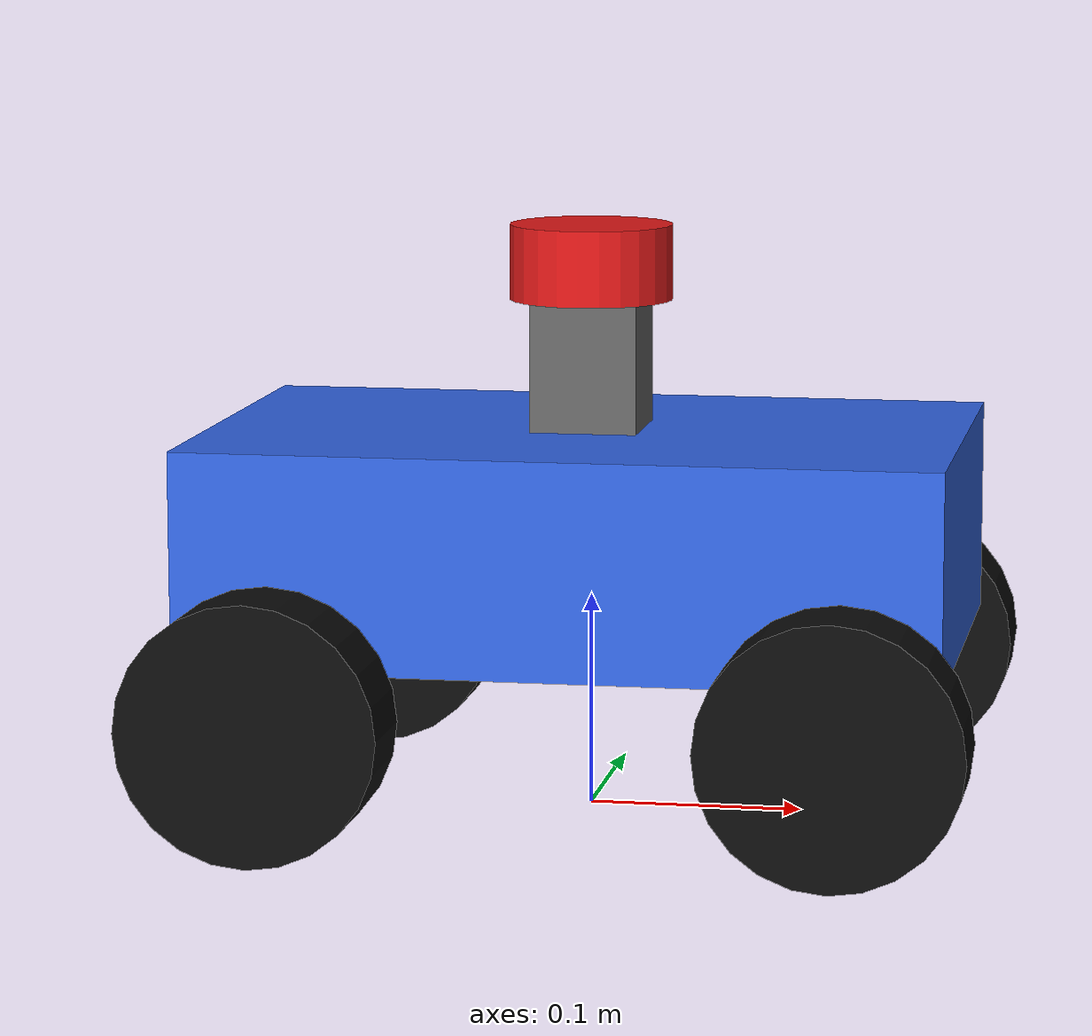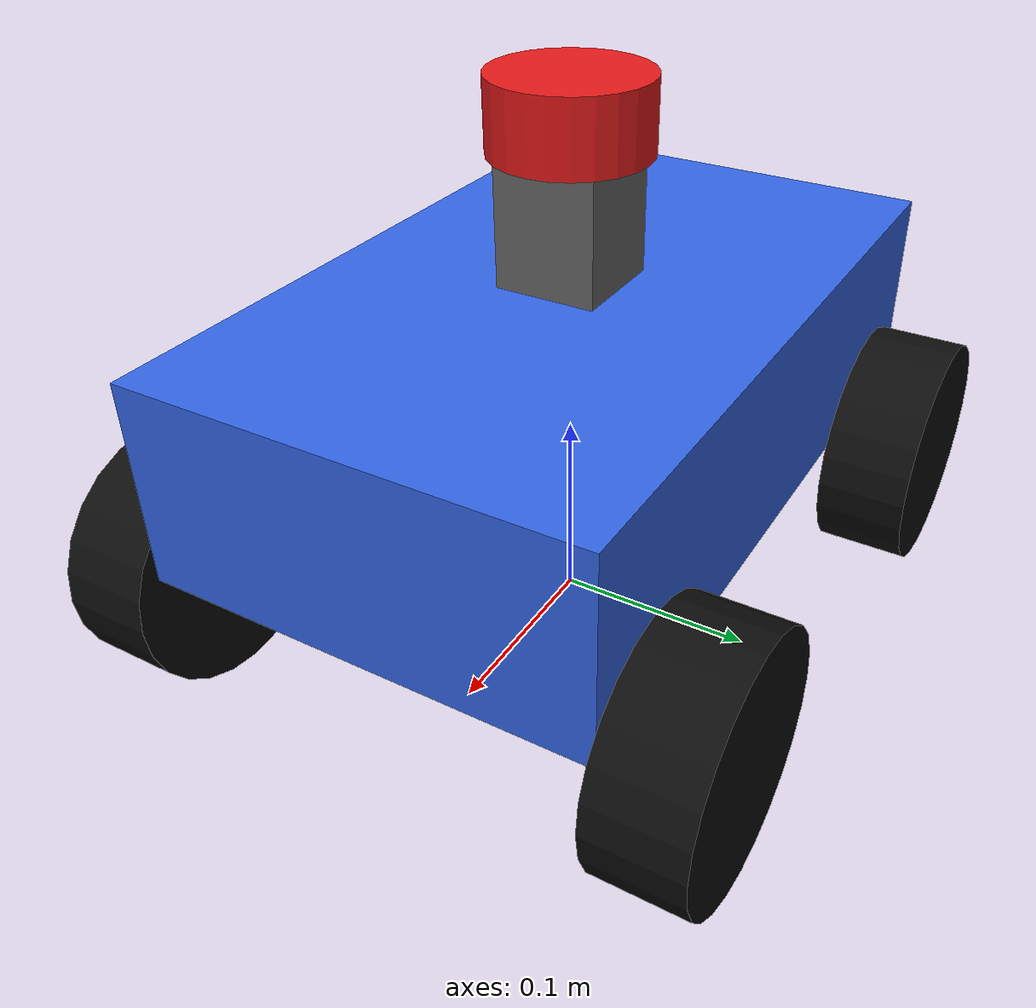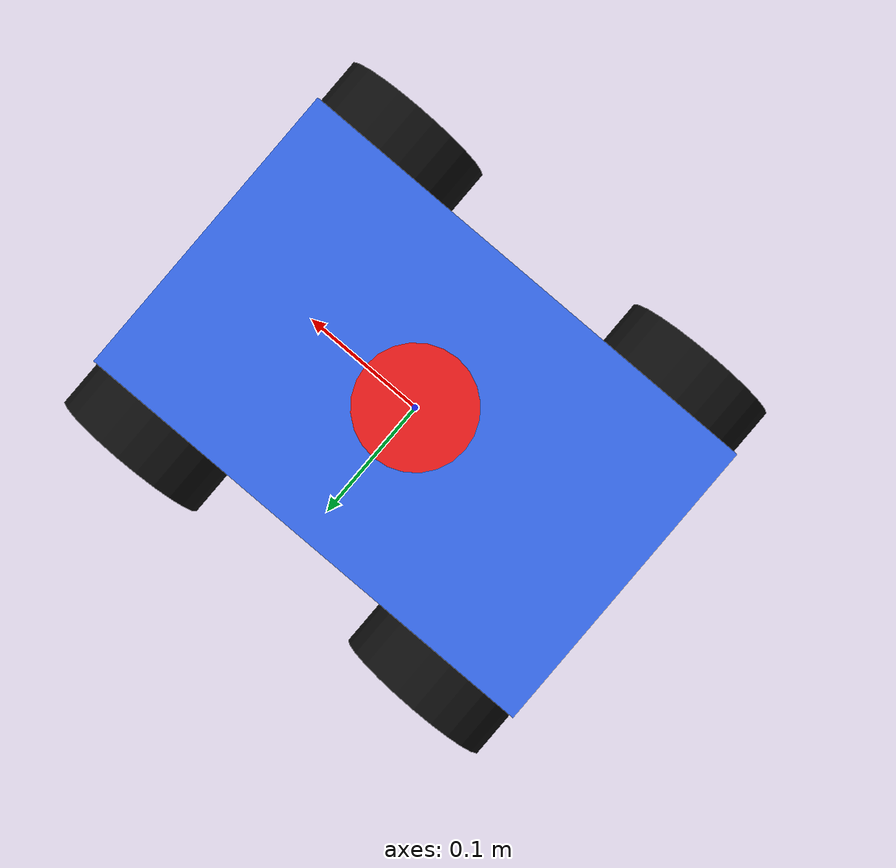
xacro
<?xml version="1.0"?>
<robot xmlns:xacro="http://www.ros.org/wiki/xacro" name="rl_robot">

  <!-- 4-wheel skid-steer robot with a top-mounted 2D lidar.
       Built for reinforcement-learning (obstacle avoidance / goal reaching):
         action  -> /cmd_vel   observation -> /scan (+ /odom)  -->

  <xacro:include filename="materials.xacro"/>
  <xacro:include filename="robot_core.xacro"/>
  <xacro:include filename="gazebo_control.xacro"/>
  <xacro:include filename="lidar.xacro"/>

</robot>

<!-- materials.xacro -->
<robot xmlns:xacro="http://www.ros.org/wiki/xacro">

  <!-- RViz visual materials -->
  <material name="blue">  <color rgba="0.2 0.4 0.9 1.0"/></material>
  <material name="black"> <color rgba="0.05 0.05 0.05 1.0"/></material>
  <material name="grey">  <color rgba="0.4 0.4 0.4 1.0"/></material>
  <material name="red">   <color rgba="0.9 0.1 0.1 1.0"/></material>
  <material name="white"> <color rgba="1.0 1.0 1.0 1.0"/></material>

  <gazebo reference="base_link">
    <material>Gazebo/Blue</material>
  </gazebo>
  <gazebo reference="lidar_mast">
    <material>Gazebo/Grey</material>
  </gazebo>
  <gazebo reference="lidar_link">
    <material>Gazebo/Red</material>
  </gazebo>

  <xacro:macro name="wheel_gazebo" params="ref">
    <gazebo reference="${ref}">
      <material>Gazebo/Black</material>
      <mu1>1.0</mu1>
      <mu2>0.0</mu2>
      <fdir1>1 0 0</fdir1>
      <kp>500000.0</kp>
      <kd>10.0</kd>
      <minDepth>0.001</minDepth>
      <maxVel>1.0</maxVel>
    </gazebo>
  </xacro:macro>

  <xacro:wheel_gazebo ref="front_left_wheel"/>
  <xacro:wheel_gazebo ref="front_right_wheel"/>
  <xacro:wheel_gazebo ref="back_left_wheel"/>
  <xacro:wheel_gazebo ref="back_right_wheel"/>

</robot>

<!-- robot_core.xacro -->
<robot xmlns:xacro="http://www.ros.org/wiki/xacro">

  <xacro:include filename="inertial_macros.xacro"/>

  <!--  Robot dimensions (single source of truth)                           -->
  <!--  Small, symmetric, low centre of mass = stable + easy to learn.      -->
  <xacro:property name="chassis_length" value="0.35"/>
  <xacro:property name="chassis_width"  value="0.22"/>
  <xacro:property name="chassis_height" value="0.10"/>
  <xacro:property name="chassis_mass"   value="4.0"/>

  <xacro:property name="wheel_radius"   value="0.06"/>
  <xacro:property name="wheel_width"    value="0.045"/>
  <xacro:property name="wheel_mass"     value="0.5"/>

  <!-- longitudinal distance of each wheel centre from robot centre -->
  <xacro:property name="wheel_xoff"     value="0.13"/>
  <!-- lateral distance of each wheel centre from robot centre -->
  <xacro:property name="wheel_yoff"     value="${chassis_width/2 + wheel_width/2}"/>

  <!-- height of base_link origin above the ground -->
  <xacro:property name="ground_clearance" value="0.02"/>

  <!--  Frames                                                              -->

  <!-- base_footprint: ground-projected origin, the frame Nav2/RL treat as
       "the robot". Sits on the floor directly under the chassis centre. -->
  <link name="base_footprint"/>

  <joint name="base_joint" type="fixed">
    <parent link="base_footprint"/>
    <child  link="base_link"/>
    <origin xyz="0 0 ${wheel_radius + ground_clearance}" rpy="0 0 0"/>
  </joint>

  <!--  Chassis                                                             -->
  <link name="base_link">
    <visual>
      <origin xyz="0 0 ${chassis_height/2}" rpy="0 0 0"/>
      <geometry>
        <box size="${chassis_length} ${chassis_width} ${chassis_height}"/>
      </geometry>
      <material name="blue"/>
    </visual>
    <collision>
      <origin xyz="0 0 ${chassis_height/2}" rpy="0 0 0"/>
      <geometry>
        <box size="${chassis_length} ${chassis_width} ${chassis_height}"/>
      </geometry>
    </collision>
    <xacro:inertial_box mass="${chassis_mass}" x="${chassis_length}" y="${chassis_width}" z="${chassis_height}">
      <origin xyz="0 0 ${chassis_height/2}" rpy="0 0 0"/>
    </xacro:inertial_box>
  </link>

  <!--  Wheel macro (4x, skid-steer)                                        -->
  <!--  x_reflect: +1 front, -1 back    y_reflect: +1 left, -1 right        -->
  <xacro:macro name="wheel" params="prefix x_reflect y_reflect">
    <link name="${prefix}_wheel">
      <visual>
        <origin xyz="0 0 0" rpy="${pi/2} 0 0"/>
        <geometry>
          <cylinder radius="${wheel_radius}" length="${wheel_width}"/>
        </geometry>
        <material name="black"/>
      </visual>
      <collision>
        <origin xyz="0 0 0" rpy="${pi/2} 0 0"/>
        <geometry>
          <cylinder radius="${wheel_radius}" length="${wheel_width}"/>
        </geometry>
      </collision>
      <xacro:inertial_cylinder mass="${wheel_mass}" length="${wheel_width}" radius="${wheel_radius}">
        <origin xyz="0 0 0" rpy="${pi/2} 0 0"/>
      </xacro:inertial_cylinder>
    </link>

    <joint name="${prefix}_wheel_joint" type="continuous">
      <parent link="base_link"/>
      <child  link="${prefix}_wheel"/>
      <origin xyz="${x_reflect*wheel_xoff} ${y_reflect*wheel_yoff} ${-ground_clearance}"
              rpy="0 0 0"/>
      <axis xyz="0 1 0"/>
    </joint>
  </xacro:macro>

  <xacro:wheel prefix="front_left"  x_reflect="1"  y_reflect="1"/>
  <xacro:wheel prefix="front_right" x_reflect="1"  y_reflect="-1"/>
  <xacro:wheel prefix="back_left"   x_reflect="-1" y_reflect="1"/>
  <xacro:wheel prefix="back_right"  x_reflect="-1" y_reflect="-1"/>

  <!--  Lidar mast + lidar link (on top, centred for a symmetric scan)      -->
  <xacro:property name="mast_height" value="0.06"/>
  <xacro:property name="lidar_height" value="0.035"/>
  <xacro:property name="lidar_radius" value="0.038"/>

  <link name="lidar_mast">
    <visual>
      <origin xyz="0 0 ${mast_height/2}" rpy="0 0 0"/>
      <geometry>
        <box size="0.05 0.05 ${mast_height}"/>
      </geometry>
      <material name="grey"/>
    </visual>
    <collision>
      <origin xyz="0 0 ${mast_height/2}" rpy="0 0 0"/>
      <geometry>
        <box size="0.05 0.05 ${mast_height}"/>
      </geometry>
    </collision>
    <xacro:inertial_box mass="0.15" x="0.05" y="0.05" z="${mast_height}">
      <origin xyz="0 0 ${mast_height/2}" rpy="0 0 0"/>
    </xacro:inertial_box>
  </link>

  <joint name="lidar_mast_joint" type="fixed">
    <parent link="base_link"/>
    <child  link="lidar_mast"/>
    <origin xyz="0 0 ${chassis_height}" rpy="0 0 0"/>
  </joint>

  <link name="lidar_link">
    <visual>
      <origin xyz="0 0 ${lidar_height/2}" rpy="0 0 0"/>
      <geometry>
        <cylinder radius="${lidar_radius}" length="${lidar_height}"/>
      </geometry>
      <material name="red"/>
    </visual>
    <collision>
      <origin xyz="0 0 ${lidar_height/2}" rpy="0 0 0"/>
      <geometry>
        <cylinder radius="${lidar_radius}" length="${lidar_height}"/>
      </geometry>
    </collision>
    <xacro:inertial_cylinder mass="0.1" length="${lidar_height}" radius="${lidar_radius}">
      <origin xyz="0 0 ${lidar_height/2}" rpy="0 0 0"/>
    </xacro:inertial_cylinder>
  </link>

  <joint name="lidar_joint" type="fixed">
    <parent link="lidar_mast"/>
    <child  link="lidar_link"/>
    <origin xyz="0 0 ${mast_height}" rpy="0 0 0"/>
  </joint>

</robot>

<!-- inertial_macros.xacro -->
<robot xmlns:xacro="http://www.ros.org/wiki/xacro">

  <xacro:macro name="inertial_box" params="mass x y z *origin">
    <inertial>
      <xacro:insert_block name="origin"/>
      <mass value="${mass}"/>
      <inertia
        ixx="${(1.0/12.0) * mass * (y*y + z*z)}" ixy="0.0" ixz="0.0"
        iyy="${(1.0/12.0) * mass * (x*x + z*z)}" iyz="0.0"
        izz="${(1.0/12.0) * mass * (x*x + y*y)}"/>
    </inertial>
  </xacro:macro>

  <xacro:macro name="inertial_cylinder" params="mass length radius *origin">
    <inertial>
      <xacro:insert_block name="origin"/>
      <mass value="${mass}"/>
      <inertia
        ixx="${(1.0/12.0) * mass * (3*radius*radius + length*length)}" ixy="0.0" ixz="0.0"
        iyy="${(1.0/12.0) * mass * (3*radius*radius + length*length)}" iyz="0.0"
        izz="${(1.0/2.0) * mass * (radius*radius)}"/>
    </inertial>
  </xacro:macro>

</robot>
